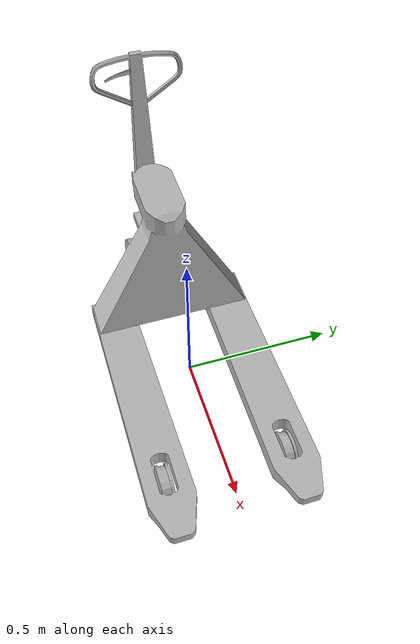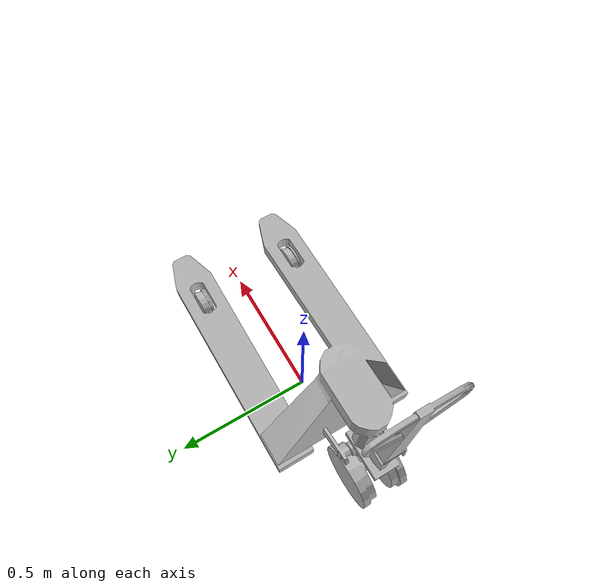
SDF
<?xml version="1.0" ?>
<sdf version="1.6">
  <model name="aws_robomaker_warehouse_PalletJackB_01_classic">
    <link name="link">
      <inertial>
        <mass>2</mass>
        <inertia>
          <ixx>0.277</ixx>
          <ixy>0</ixy>
          <ixz>0</ixz>
          <iyy>0.452</iyy>
          <iyz>0</iyz>
          <izz>0.268</izz>
        </inertia>
      </inertial>
      <collision name="collision">
        <geometry>
          <mesh>
            <uri>model://aws_robomaker_warehouse_PalletJackB_01_classic/meshes/aws_robomaker_warehouse_PalletJackB_01_classic_collision.DAE</uri>
            <scale>1 1 1</scale>
          </mesh>
        </geometry>
		<surface>
          <friction>
            <ode>
              <mu>0.2</mu>
              <mu2>0.2</mu2>
              <fdir1>0 0 0</fdir1>
              <slip1>0</slip1>
              <slip2>0</slip2>
            </ode>
        </friction>
          </surface>
      </collision>
      <visual name="visual">
	    <geometry>
          <mesh>
            <uri>model://aws_robomaker_warehouse_PalletJackB_01_classic/meshes/aws_robomaker_warehouse_PalletJackB_01_classic_visual.DAE</uri>
          </mesh>
        </geometry>
      <meta> <layer> 1 </layer></meta>
</visual>
    </link>
<static>1</static>
  </model>
</sdf>
